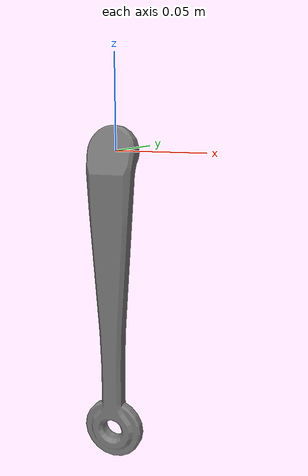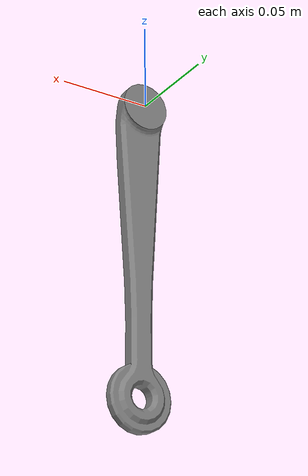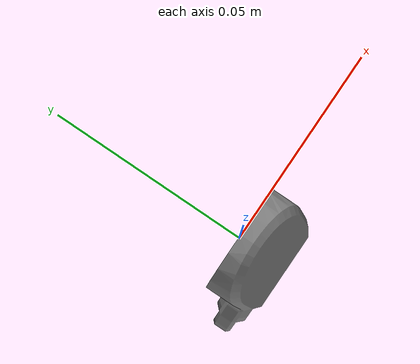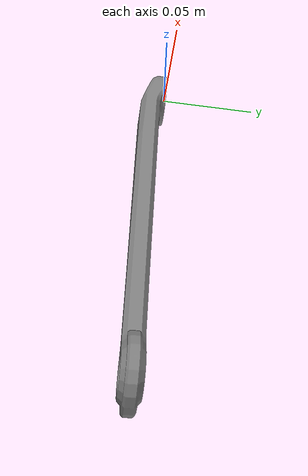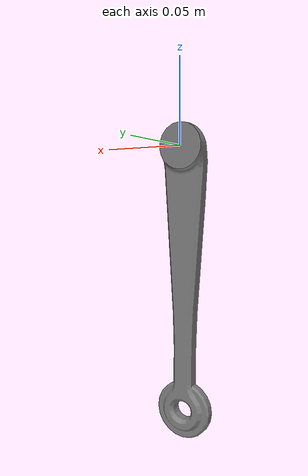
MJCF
<mujoco model="solo_lower_leg_v2_right_side">
  <default>
    <default class="visual">
      <geom group="2" type="mesh" contype="0" conaffinity="0"/>
    </default>
    <default class="collision">
      <geom group="3" type="mesh"/>
    </default>
  </default>
  <asset>
    <mesh file="solo_lower_leg_v2_right_side.obj"/>
    <mesh file="solo_lower_leg_v2_right_side_collision_0.obj"/>
    <mesh file="solo_lower_leg_v2_right_side_collision_1.obj"/>
    <mesh file="solo_lower_leg_v2_right_side_collision_2.obj"/>
    <mesh file="solo_lower_leg_v2_right_side_collision_3.obj"/>
    <mesh file="solo_lower_leg_v2_right_side_collision_4.obj"/>
    <mesh file="solo_lower_leg_v2_right_side_collision_5.obj"/>
    <mesh file="solo_lower_leg_v2_right_side_collision_6.obj"/>
    <mesh file="solo_lower_leg_v2_right_side_collision_7.obj"/>
  </asset>
  <worldbody>
    <body name="solo_lower_leg_v2_right_side">
      <geom mesh="solo_lower_leg_v2_right_side" class="visual"/>
      <geom mesh="solo_lower_leg_v2_right_side_collision_0" class="collision"/>
      <geom mesh="solo_lower_leg_v2_right_side_collision_1" class="collision"/>
      <geom mesh="solo_lower_leg_v2_right_side_collision_2" class="collision"/>
      <geom mesh="solo_lower_leg_v2_right_side_collision_3" class="collision"/>
      <geom mesh="solo_lower_leg_v2_right_side_collision_4" class="collision"/>
      <geom mesh="solo_lower_leg_v2_right_side_collision_5" class="collision"/>
      <geom mesh="solo_lower_leg_v2_right_side_collision_6" class="collision"/>
      <geom mesh="solo_lower_leg_v2_right_side_collision_7" class="collision"/>
    </body>
  </worldbody>
</mujoco>
